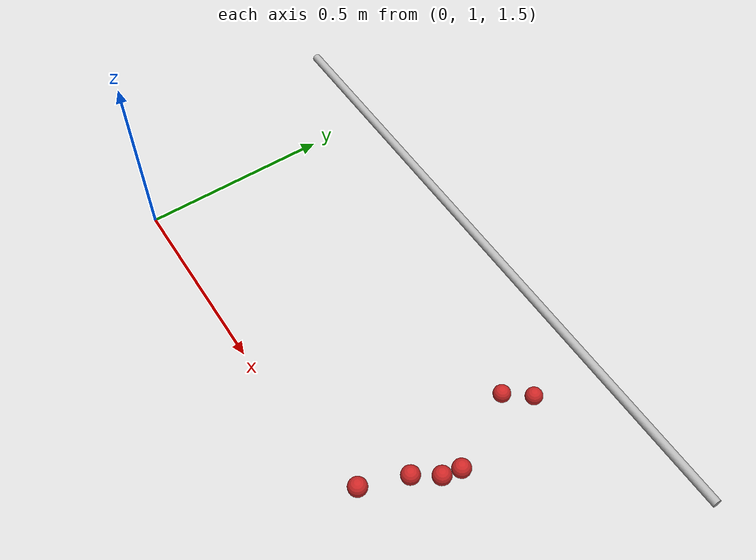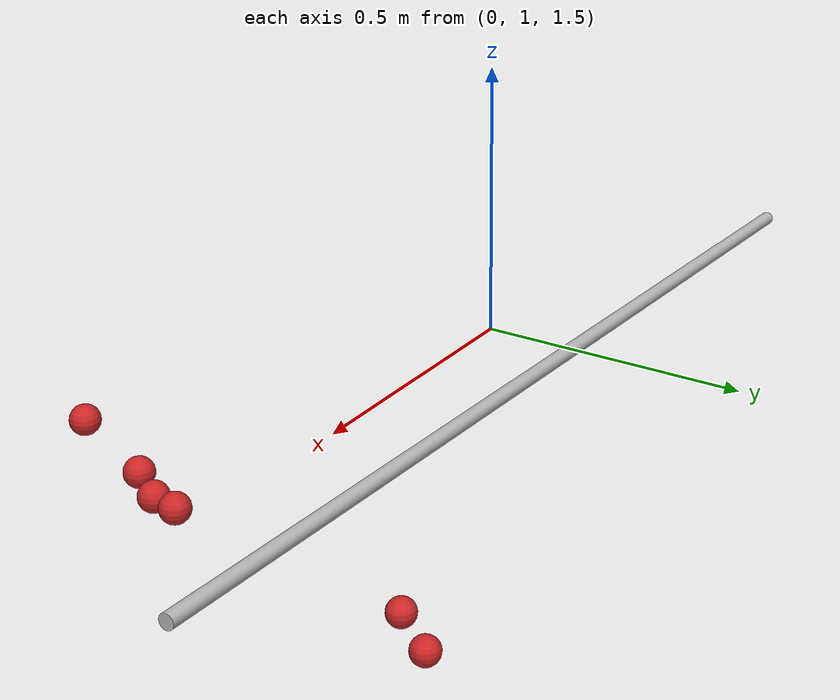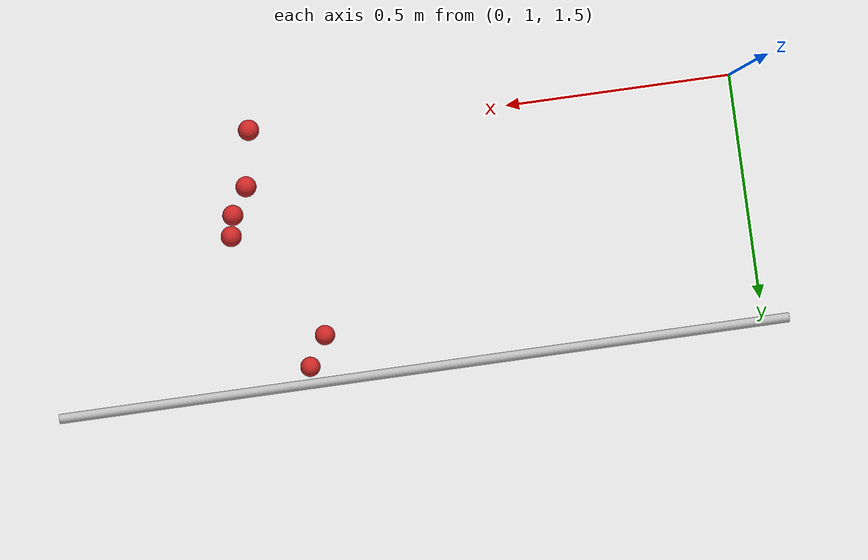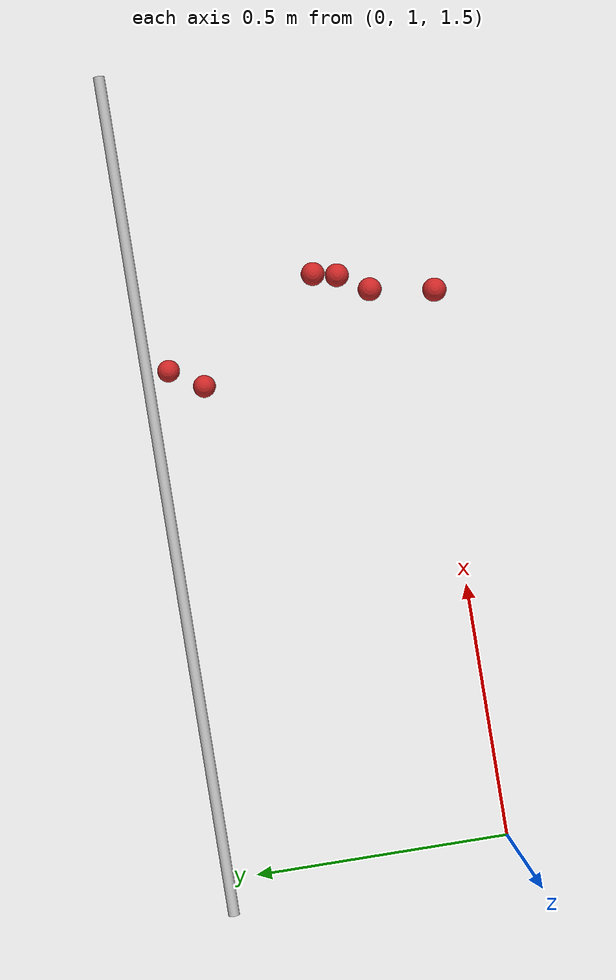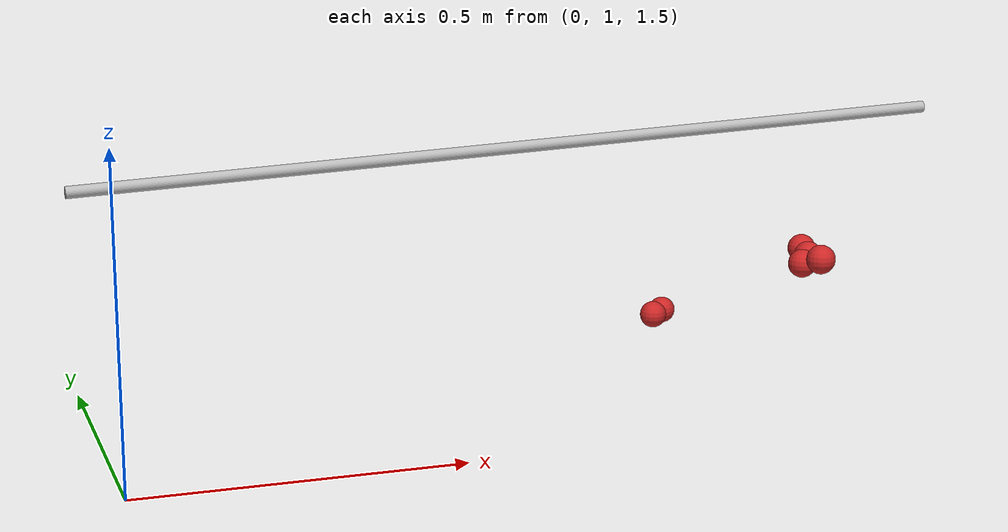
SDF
<sdf version="1.4">
 <model name="pergola">
  <link name="vine_12">
   <pose>0.75 1.53 1.85 0 1.5374753309166493 0</pose>
   <collision name="collision">
    <geometry><cylinder><radius>0.01</radius><length>1.5008331019803633</length></cylinder></geometry>
   </collision>
   <visual name="visual">
    <geometry><cylinder><radius>0.01</radius><length>1.5008331019803633</length></cylinder></geometry>
    <material>
     <script>
      <uri>model://tree_trunk/materials/scripts</uri>
      <uri>model://tree_trunk/materials/textures</uri>
      <name>Tree/Bark</name>
     </script>
    </material>
   </visual>
   <inertial>
    <mass>5</mass>
    <inertia>
     <ixx>0.9386666666666668</ixx>
     <ixy>0.0</ixy>
     <ixz>0.0</ixz>
     <iyy>0.9386666666666668</iyy>
     <iyz>0.0</iyz>
     <izz>0.00025</izz>
    </inertia>
   </inertial>
  </link>
  <link name="fruit_11">
   <pose>1.0508674565913785 0.9947060737637676 1.7634767836865968 0 0 0</pose>
   <collision name="fruit_collision_11"><geometry><sphere><radius>0.022</radius></sphere></geometry></collision>
   <visual name="visual">
    <geometry><sphere><radius>0.022</radius></sphere></geometry>
    <material><script><name>Gazebo/Red</name></script></material>
   </visual>
   <inertial>
    <mass>0.05</mass>
    <inertia>
     <ixx>9.679999999999999e-06</ixx>
     <ixy>0.0</ixy>
     <ixz>0.0</ixz>
     <iyy>9.679999999999999e-06</iyy>
     <iyz>0.0</iyz>
     <izz>9.679999999999999e-06</izz>
    </inertia>
   </inertial>
   <sensor name="fruit_contact_11" type="contact">
    <plugin name="contact_plugin_11" filename="libcontact_plugin.so"/>
    <contact><collision>fruit_collision_11</collision><topic>fruit_contact_topic_11</topic></contact>
   </sensor>
  </link>
  <link name="fruit_27">
   <pose>1.075488321369859 1.1091960272300463 1.7273901274231283 0 0 0</pose>
   <collision name="fruit_collision_27"><geometry><sphere><radius>0.022</radius></sphere></geometry></collision>
   <visual name="visual">
    <geometry><sphere><radius>0.022</radius></sphere></geometry>
    <material><script><name>Gazebo/Red</name></script></material>
   </visual>
   <inertial>
    <mass>0.05</mass>
    <inertia>
     <ixx>9.679999999999999e-06</ixx>
     <ixy>0.0</ixy>
     <ixz>0.0</ixz>
     <iyy>9.679999999999999e-06</iyy>
     <iyz>0.0</iyz>
     <izz>9.679999999999999e-06</izz>
    </inertia>
   </inertial>
   <sensor name="fruit_contact_27" type="contact">
    <plugin name="contact_plugin_27" filename="libcontact_plugin.so"/>
    <contact><collision>fruit_collision_27</collision><topic>fruit_contact_topic_27</topic></contact>
   </sensor>
  </link>
  <link name="fruit_40">
   <pose>0.963063270433557 1.4471723409699322 1.564005005338644 0 0 0</pose>
   <collision name="fruit_collision_40"><geometry><sphere><radius>0.022</radius></sphere></geometry></collision>
   <visual name="visual">
    <geometry><sphere><radius>0.022</radius></sphere></geometry>
    <material><script><name>Gazebo/Red</name></script></material>
   </visual>
   <inertial>
    <mass>0.05</mass>
    <inertia>
     <ixx>9.679999999999999e-06</ixx>
     <ixy>0.0</ixy>
     <ixz>0.0</ixz>
     <iyy>9.679999999999999e-06</iyy>
     <iyz>0.0</iyz>
     <izz>9.679999999999999e-06</izz>
    </inertia>
   </inertial>
   <sensor name="fruit_contact_40" type="contact">
    <plugin name="contact_plugin_40" filename="libcontact_plugin.so"/>
    <contact><collision>fruit_collision_40</collision><topic>fruit_contact_topic_40</topic></contact>
   </sensor>
  </link>
  <link name="fruit_162">
   <pose>1.1113338754581499 1.1648759201284633 1.7241932337737393 0 0 0</pose>
   <collision name="fruit_collision_162"><geometry><sphere><radius>0.022</radius></sphere></geometry></collision>
   <visual name="visual">
    <geometry><sphere><radius>0.022</radius></sphere></geometry>
    <material><script><name>Gazebo/Red</name></script></material>
   </visual>
   <inertial>
    <mass>0.05</mass>
    <inertia>
     <ixx>9.679999999999999e-06</ixx>
     <ixy>0.0</ixy>
     <ixz>0.0</ixz>
     <iyy>9.679999999999999e-06</iyy>
     <iyz>0.0</iyz>
     <izz>9.679999999999999e-06</izz>
    </inertia>
   </inertial>
   <sensor name="fruit_contact_162" type="contact">
    <plugin name="contact_plugin_162" filename="libcontact_plugin.so"/>
    <contact><collision>fruit_collision_162</collision><topic>fruit_contact_topic_162</topic></contact>
   </sensor>
  </link>
  <link name="fruit_345">
   <pose>1.0049608526899378 1.5121632837538477 1.551230002275501 0 0 0</pose>
   <collision name="fruit_collision_345"><geometry><sphere><radius>0.022</radius></sphere></geometry></collision>
   <visual name="visual">
    <geometry><sphere><radius>0.022</radius></sphere></geometry>
    <material><script><name>Gazebo/Red</name></script></material>
   </visual>
   <inertial>
    <mass>0.05</mass>
    <inertia>
     <ixx>9.679999999999999e-06</ixx>
     <ixy>0.0</ixy>
     <ixz>0.0</ixz>
     <iyy>9.679999999999999e-06</iyy>
     <iyz>0.0</iyz>
     <izz>9.679999999999999e-06</izz>
    </inertia>
   </inertial>
   <sensor name="fruit_contact_345" type="contact">
    <plugin name="contact_plugin_345" filename="libcontact_plugin.so"/>
    <contact><collision>fruit_collision_345</collision><topic>fruit_contact_topic_345</topic></contact>
   </sensor>
  </link>
  <link name="fruit_420">
   <pose>1.1206323832095932 1.20848198053492 1.7247005021182715 0 0 0</pose>
   <collision name="fruit_collision_420"><geometry><sphere><radius>0.022</radius></sphere></geometry></collision>
   <visual name="visual">
    <geometry><sphere><radius>0.022</radius></sphere></geometry>
    <material><script><name>Gazebo/Red</name></script></material>
   </visual>
   <inertial>
    <mass>0.05</mass>
    <inertia>
     <ixx>9.679999999999999e-06</ixx>
     <ixy>0.0</ixy>
     <ixz>0.0</ixz>
     <iyy>9.679999999999999e-06</iyy>
     <iyz>0.0</iyz>
     <izz>9.679999999999999e-06</izz>
    </inertia>
   </inertial>
   <sensor name="fruit_contact_420" type="contact">
    <plugin name="contact_plugin_420" filename="libcontact_plugin.so"/>
    <contact><collision>fruit_collision_420</collision><topic>fruit_contact_topic_420</topic></contact>
   </sensor>
  </link>
 </model>
</sdf>
